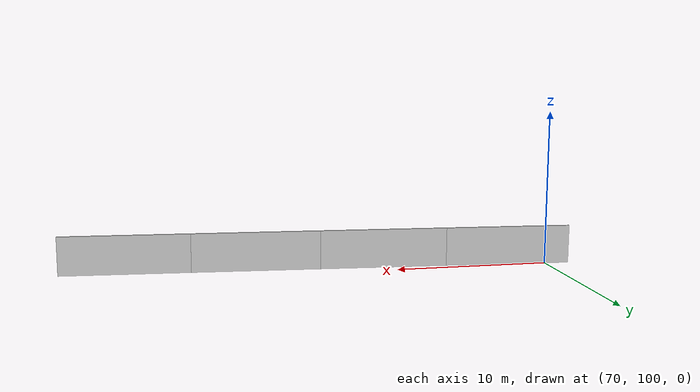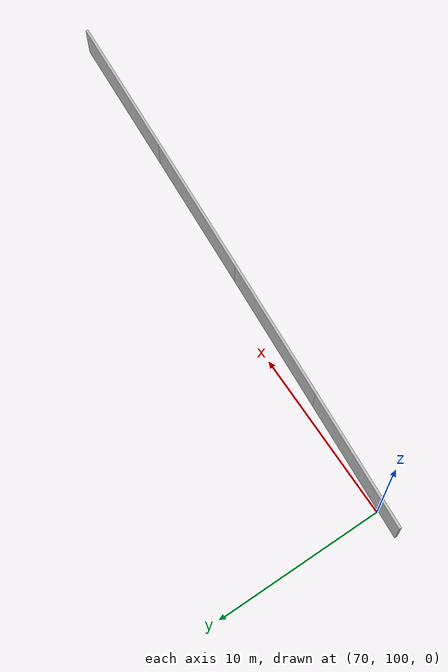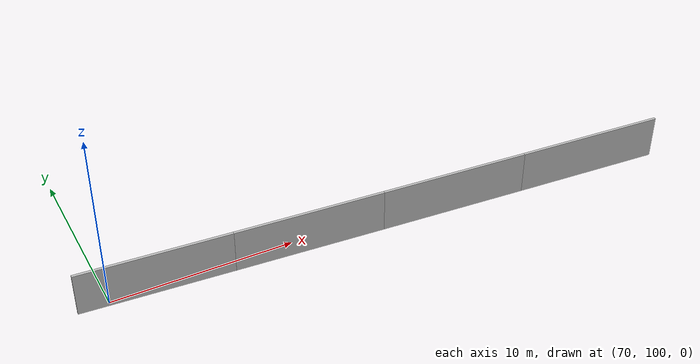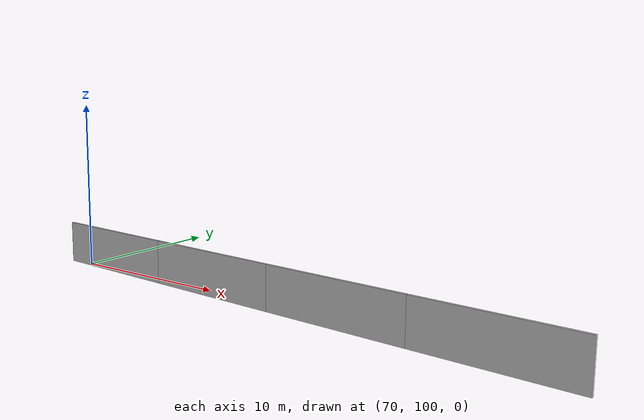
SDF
<?xml version="1.0" ?>
<sdf version="1.6">
  <model name="sps_1900">
    <pose frame="">0 0 0 0 -0 0</pose>
    <static>1</static>
    <self_collide>0</self_collide>
    <allow_auto_disable>0</allow_auto_disable>
    <link name="Wall9029">
      <kinematic>0</kinematic>
      <gravity>1</gravity>
      <self_collide>0</self_collide>
      <collision name="collision">
        <geometry>
          <box>
            <size>8.26185 0.15 2.5</size>
          </box>
        </geometry>
        <pose frame="">0 0 0 0 -0 0</pose>
      </collision>
      <visual name="visual">
        <geometry>
          <box>
            <size>8.26185 0.15 2.5</size>
          </box>
        </geometry>
        <pose frame="">0 0 0 0 -0 0</pose>
        <cast_shadows>1</cast_shadows>
        <transparency>0.0</transparency>
      </visual>
      <pose frame="">72.4823 99.686 1.25 0 0 -0.0672778</pose>
    </link>
    <link name="Wall9030">
      <kinematic>0</kinematic>
      <gravity>1</gravity>
      <self_collide>0</self_collide>
      <collision name="collision">
        <geometry>
          <box>
            <size>8.26161 0.15 2.5</size>
          </box>
        </geometry>
        <pose frame="">0 0 0 0 -0 0</pose>
      </collision>
      <visual name="visual">
        <geometry>
          <box>
            <size>8.26161 0.15 2.5</size>
          </box>
        </geometry>
        <pose frame="">0 0 0 0 -0 0</pose>
        <cast_shadows>1</cast_shadows>
        <transparency>0.0</transparency>
      </visual>
      <pose frame="">80.7259 99.1403 1.25 0 0 -0.0649253</pose>
    </link>
    <link name="Wall9031">
      <kinematic>0</kinematic>
      <gravity>1</gravity>
      <self_collide>0</self_collide>
      <collision name="collision">
        <geometry>
          <box>
            <size>8.26218 0.15 2.5</size>
          </box>
        </geometry>
        <pose frame="">0 0 0 0 -0 0</pose>
      </collision>
      <visual name="visual">
        <geometry>
          <box>
            <size>8.26218 0.15 2.5</size>
          </box>
        </geometry>
        <pose frame="">0 0 0 0 -0 0</pose>
        <cast_shadows>1</cast_shadows>
        <transparency>0.0</transparency>
      </visual>
      <pose frame="">88.9711 98.6141 1.25 0 0 -0.0625372</pose>
    </link>
    <link name="Wall9032">
      <kinematic>0</kinematic>
      <gravity>1</gravity>
      <self_collide>0</self_collide>
      <collision name="collision">
        <geometry>
          <box>
            <size>8.26172 0.15 2.5</size>
          </box>
        </geometry>
        <pose frame="">0 0 0 0 -0 0</pose>
      </collision>
      <visual name="visual">
        <geometry>
          <box>
            <size>8.26172 0.15 2.5</size>
          </box>
        </geometry>
        <pose frame="">0 0 0 0 -0 0</pose>
        <cast_shadows>1</cast_shadows>
        <transparency>0.0</transparency>
      </visual>
      <pose frame="">97.2175 98.1075 1.25 0 0 -0.0601722</pose>
    </link>
  </model>
</sdf>
